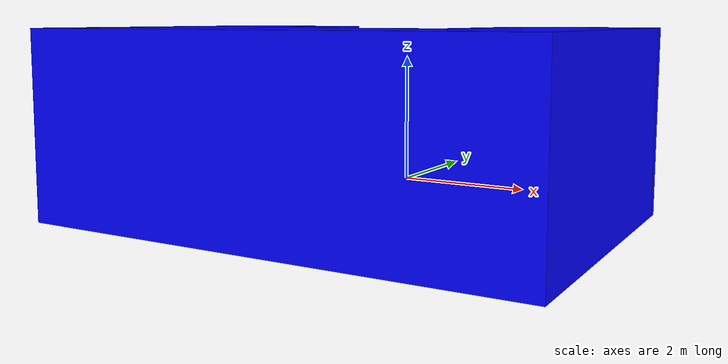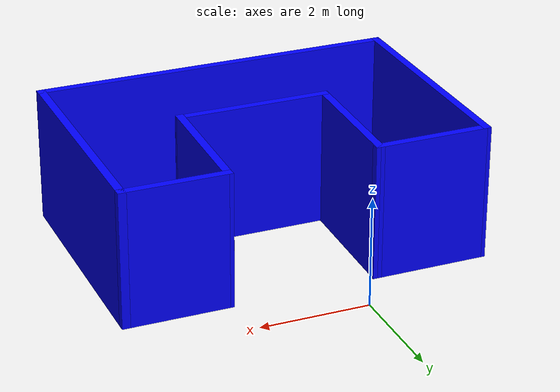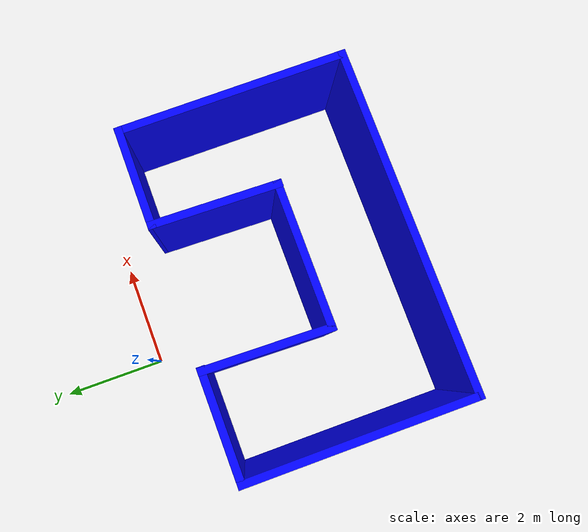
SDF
<?xml version='1.0'?>
<sdf version='1.6'>
  <model name='MyWorld'>
    <pose frame=''>0.749816 -3.05907 0 0 -0 0</pose>
    <link name='Wall_0'>
      <collision name='Wall_0_Collision'>
        <geometry>
          <box>
            <size>4.5 0.15 2.5</size>
          </box>
        </geometry>
        <pose frame=''>0 0 1.25 0 -0 0</pose>
      </collision>
      <visual name='Wall_0_Visual'>
        <pose frame=''>0 0 1.25 0 -0 0</pose>
        <geometry>
          <box>
            <size>4.5 0.15 2.5</size>
          </box>
        </geometry>
        <material>
          <script>
            <uri>file://media/materials/scripts/gazebo.material</uri>
            <name>Gazebo/Grey</name>
          </script>
          <ambient>0 0 1 1</ambient>
        </material>
      </visual>
      <pose frame=''>-3.29982 -0.005929 0 0 0 -1.5708</pose>
    </link>
    <link name='Wall_1'>
      <collision name='Wall_1_Collision'>
        <geometry>
          <box>
            <size>6.75 0.15 2.5</size>
          </box>
        </geometry>
        <pose frame=''>0 0 1.25 0 -0 0</pose>
      </collision>
      <visual name='Wall_1_Visual'>
        <pose frame=''>0 0 1.25 0 -0 0</pose>
        <geometry>
          <box>
            <size>6.75 0.15 2.5</size>
          </box>
        </geometry>
        <material>
          <script>
            <uri>file://media/materials/scripts/gazebo.material</uri>
            <name>Gazebo/Grey</name>
          </script>
          <ambient>0 0 1 1</ambient>
        </material>
      </visual>
      <pose frame=''>0.000184 -2.18093 0 0 -0 0</pose>
    </link>
    <link name='Wall_2'>
      <collision name='Wall_2_Collision'>
        <geometry>
          <box>
            <size>4.5 0.15 2.5</size>
          </box>
        </geometry>
        <pose frame=''>0 0 1.25 0 -0 0</pose>
      </collision>
      <visual name='Wall_2_Visual'>
        <pose frame=''>0 0 1.25 0 -0 0</pose>
        <geometry>
          <box>
            <size>4.5 0.15 2.5</size>
          </box>
        </geometry>
        <material>
          <script>
            <uri>file://media/materials/scripts/gazebo.material</uri>
            <name>Gazebo/Grey</name>
          </script>
          <ambient>0 0 1 1</ambient>
        </material>
      </visual>
      <pose frame=''>3.30018 -0.005929 0 0 -0 1.5708</pose>
    </link>
    <link name='Wall_3'>
      <collision name='Wall_3_Collision'>
        <geometry>
          <box>
            <size>2 0.15 2.5</size>
          </box>
        </geometry>
        <pose frame=''>0 0 1.25 0 -0 0</pose>
      </collision>
      <visual name='Wall_3_Visual'>
        <pose frame=''>0 0 1.25 0 -0 0</pose>
        <geometry>
          <box>
            <size>2 0.15 2.5</size>
          </box>
        </geometry>
        <material>
          <script>
            <uri>file://media/materials/scripts/gazebo.material</uri>
            <name>Gazebo/Grey</name>
          </script>
          <ambient>0 0 1 1</ambient>
        </material>
      </visual>
      <pose frame=''>2.37518 2.16907 0 0 -0 3.14159</pose>
    </link>
    <link name='Wall_4'>
      <collision name='Wall_4_Collision'>
        <geometry>
          <box>
            <size>2.54075 0.15 2.5</size>
          </box>
        </geometry>
        <pose frame=''>0 0 1.25 0 -0 0</pose>
      </collision>
      <visual name='Wall_4_Visual'>
        <pose frame=''>0 0 1.25 0 -0 0</pose>
        <geometry>
          <box>
            <size>2.54075 0.15 2.5</size>
          </box>
        </geometry>
        <material>
          <script>
            <uri>file://media/materials/scripts/gazebo.material</uri>
            <name>Gazebo/Grey</name>
          </script>
          <ambient>0 0 1 1</ambient>
        </material>
      </visual>
      <pose frame=''>1.42018 0.974071 0 0 0 -1.5959</pose>
    </link>
    <link name='Wall_5'>
      <collision name='Wall_5_Collision'>
        <geometry>
          <box>
            <size>2.87 0.15 2.5</size>
          </box>
        </geometry>
        <pose frame=''>0 0 1.25 0 -0 0</pose>
      </collision>
      <visual name='Wall_5_Visual'>
        <pose frame=''>0 0 1.25 0 -0 0</pose>
        <geometry>
          <box>
            <size>2.87 0.15 2.5</size>
          </box>
        </geometry>
        <material>
          <script>
            <uri>file://media/materials/scripts/gazebo.material</uri>
            <name>Gazebo/Grey</name>
          </script>
          <ambient>0 0 1 1</ambient>
        </material>
      </visual>
      <pose frame=''>0.030184 -0.210929 0 0 -0 3.14159</pose>
    </link>
    <link name='Wall_7'>
      <collision name='Wall_7_Collision'>
        <geometry>
          <box>
            <size>2.54075 0.15 2.5</size>
          </box>
        </geometry>
        <pose frame=''>0 0 1.25 0 -0 0</pose>
      </collision>
      <visual name='Wall_7_Visual'>
        <pose frame=''>0 0 1.25 0 -0 0</pose>
        <geometry>
          <box>
            <size>2.54075 0.15 2.5</size>
          </box>
        </geometry>
        <material>
          <script>
            <uri>file://media/materials/scripts/gazebo.material</uri>
            <name>Gazebo/Grey</name>
          </script>
          <ambient>0 0 1 1</ambient>
        </material>
      </visual>
      <pose frame=''>-1.30982 0.984071 0 0 -0 1.5457</pose>
    </link>
    <link name='Wall_8'>
      <collision name='Wall_8_Collision'>
        <geometry>
          <box>
            <size>2.18003 0.15 2.5</size>
          </box>
        </geometry>
        <pose frame=''>0 0 1.25 0 -0 0</pose>
      </collision>
      <visual name='Wall_8_Visual'>
        <pose frame=''>0 0 1.25 0 -0 0</pose>
        <geometry>
          <box>
            <size>2.18003 0.15 2.5</size>
          </box>
        </geometry>
        <material>
          <script>
            <uri>file://media/materials/scripts/gazebo.material</uri>
            <name>Gazebo/Grey</name>
          </script>
          <ambient>0 0 1 1</ambient>
        </material>
      </visual>
      <pose frame=''>-2.28482 2.17407 0 0 0 -3.13667</pose>
    </link>
    <static>1</static>
  </model>
</sdf>
